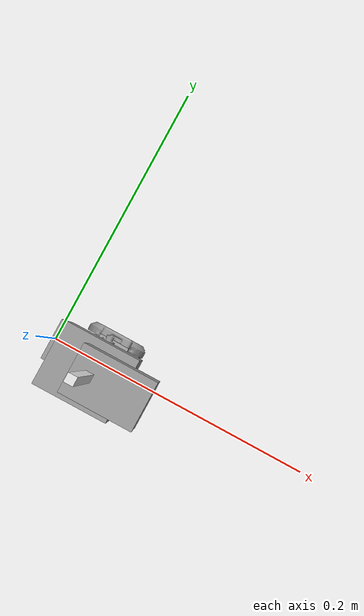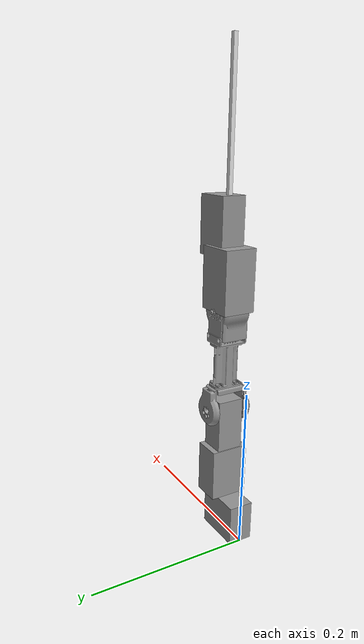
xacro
<?xml version="1.0"?>
<!-- Open_Manipulator Chain -->
<robot xmlns:xacro="http://ros.org/wiki/xacro">

  <!-- Link 1 -->
  <link name="link1">
    <visual>
      <origin xyz="${0.059*0.5} 0.0 ${0.050*0.5}" rpy="0 0 0"/>
      <geometry>
        <box size="0.059 0.031 0.050"/>
      </geometry>
      <material name="grey"/>
    </visual>

    <collision>
      <origin xyz="${0.059*0.5} 0.0 ${0.050*0.5}" rpy="0 0 0"/>
      <geometry>
        <box size="0.059 0.031 0.045"/>
      </geometry>
    </collision>
    <inertial>
      <origin xyz="3.0876154e-04 0.0000000e+00 -1.2176461e-04" />
      <mass value="7.9119962e-02" />
      <inertia ixx="1.2505234e-05" ixy="0.0" ixz="-1.7855208e-07"
               iyy="2.1898364e-05" iyz="0.0"
               izz="1.9267361e-05" />
    </inertial>
  </link>

  <!-- Joint 1 -->
  <joint name="joint1" type="revolute">
    <parent link="link1"/>
    <child link="link2"/>
    <origin xyz="0.045 0.0 0.050" rpy="0 0 0"/>
    <axis xyz="0 0 1"/>
    <limit velocity="4.8" effort="1" lower="${-pi*0.9}" upper="${pi*0.9}" />
  </joint>

  <!--  Link 2 -->
  <link name="link2">
    <visual>
      <origin xyz="0.0 0.0 ${0.065*0.5}" rpy="0 0 0"/>
      <geometry>
        <box size="0.033 0.048 0.065"/>
      </geometry>
      <material name="grey"/>
    </visual>
    <collision>
      <origin xyz="0.0 0.0 ${0.065*0.5}" rpy="0 0 0"/>
      <geometry>
        <box size="0.033 0.048 0.060"/>
      </geometry>
    </collision>
    <inertial>
      <origin xyz="-3.0184870e-04 5.4043684e-04 ${0.018 + 2.9433464e-02}" />
      <mass value="9.8406837e-02" />
      <inertia ixx="3.4543422e-05" ixy="-1.6031095e-08" ixz="-3.8375155e-07"
               iyy="3.2689329e-05" iyz="2.8511935e-08"
               izz="1.8850320e-05" />
    </inertial>
  </link>

  <!--  Joint 2 -->
  <joint name="joint2" type="revolute">
    <parent link="link2"/>
    <child link="link3"/>
    <origin xyz="0.0 0.0 0.050" rpy="${pi*0.5} 0 0"/> <!-- "0 0 ${pi}-->
    <axis xyz="0 0 1"/>
    <limit velocity="4.8" effort="1" lower="-2.8" upper="2.8" />
  </joint>

  <!--  Link 3 -->
  <link name="link3">
    <visual>
      <origin xyz="0 ${0.080*0.5} 0" rpy="0 0 0"/>
      <geometry>
        <box size="0.030 0.080 0.033"/>
      </geometry>
      <material name="grey"/>
    </visual>
    <collision>
      <origin xyz="0 ${0.080*0.5} 0" rpy="0 0 0"/>
      <geometry>
        <box size="0.030 0.075 0.033"/>
      </geometry>
    </collision>
    <inertial>
      <origin xyz="1.0308393e-02 3.7743363e-04 1.0170197e-01" />
      <mass value="1.3850917e-01" />
      <inertia ixx="3.3055381e-04" ixy="-9.7940978e-08" ixz="-3.8505711e-05"
               iyy="3.4290447e-04" iyz="-1.5717516e-06"
               izz="6.0346498e-05" />
    </inertial>
  </link>

  <!--  Joint 3 -->
  <joint name="joint3" type="revolute">
    <parent link="link3"/>
    <child link="link4"/>
    <origin xyz="0 0.0675 0 " rpy="0 0 0"/> <!-- "0 ${-pi*0.5} 0-->
    <axis xyz="0 0 1"/>
    <limit velocity="4.8" effort="1" lower="-2.8" upper="2.8" />
  </joint>

  <!--  Link 4 -->
  <link name="link4">
    <visual>
      <origin xyz="0 0 0" rpy="${-pi*0.5} 0 ${pi*0.5}"/>
      <geometry>
        <mesh filename="package://open_manipulator_description/meshes/chain_link4.stl" scale="0.001 0.001 0.001"/>
      </geometry>
      <material name="grey"/>
    </visual>
    <collision>
      <origin xyz="0 0 0" rpy="${-pi*0.5} 0 ${pi*0.5}"/>
      <geometry>
        <mesh filename="package://open_manipulator_description/meshes/chain_link4.stl" scale="0.001 0.001 0.001"/>
      </geometry>
    </collision>
    <inertial>
      <origin xyz="9.0909590e-02 3.8929816e-04 2.2413279e-04" />
      <mass value="1.3274562e-01" />
      <inertia ixx="3.0654178e-05" ixy="-1.2764155e-06" ixz="-2.6874417e-07"
               iyy="2.4230292e-04" iyz="1.1559550e-08"
               izz="2.5155057e-04" />
    </inertial>
  </link>

  <!--  Joint 4 -->
  <joint name="joint4" type="revolute">
    <parent link="link4"/>
    <child link="link5"/>
    <origin xyz="0.0 0.124 0.0" rpy="0 0 0"/>
    <axis xyz="0 0 1"/>
    <limit velocity="4.8" effort="1" lower="-2.8" upper="2.8" />
  </joint>

  <!--  Link 5 -->
  <link name="link5">
    <visual>
      <origin xyz="0 ${0.075*0.5} 0" rpy="0 0 0"/>
      <geometry>
        <box size="0.047 0.075 0.04"/>
      </geometry>
      <material name="grey"/>
    </visual>
    <collision>
      <origin xyz="0 ${0.075*0.5} 0" rpy="0 0 0"/>
      <geometry>
        <box size="0.047 0.070 0.04"/>
      </geometry>
    </collision>
    <inertial>
      <origin xyz="4.4206755e-02 3.6839985e-07 8.9142216e-03" />
      <mass value="1.4327573e-01" />
      <inertia ixx="8.0870749e-05" ixy="0.0" ixz="-1.0157896e-06"
               iyy="7.5980465e-05" iyz="0.0"
               izz="9.3127351e-05" />
    </inertial>
  </link>

  <!--  Joint 5 -->
  <joint name="joint5" type="revolute">
    <parent link="link5"/>
    <child link="link6"/>
    <origin xyz="0.0165 0.062 0.0" rpy="0 ${pi*0.5} 0"/>
    <axis xyz="0 0 1"/>
    <limit velocity="4.8" effort="1" lower="-2.8" upper="2.8" />
  </joint>

  <!--  Link 6 -->
  <link name="link6">
    <visual>
      <origin xyz="0 ${0.07*0.5} 0" rpy="0 0 0"/>
      <geometry>
        <box size="0.03 0.07 0.045"/>
      </geometry>
      <material name="grey"/>
    </visual>
    <collision>
      <origin xyz="0 ${0.07*0.5} 0" rpy="0 0 0"/>
      <geometry>
        <box size="0.03 0.065 0.045"/>
      </geometry>
    </collision>
    <inertial>
      <origin xyz="4.4206755e-02 3.6839985e-07 8.9142216e-03" />
      <mass value="1.4327573e-01" />
      <inertia ixx="8.0870749e-05" ixy="0.0" ixz="-1.0157896e-06"
               iyy="7.5980465e-05" iyz="0.0"
               izz="9.3127351e-05" />
    </inertial>
  </link>

  <!--  Joint 6 -->
  <joint name="joint6" type="revolute">
    <parent link="link6"/>
    <child link="end_effector"/>
    <origin xyz="0 0.07 -0.012" rpy="${-pi*0.5} ${-pi*0.5} 0"/> <!-- ${-pi*0.5} 0 0-->
    <axis xyz="0 0 1"/>
    <limit velocity="4.8" effort="1" lower="${-pi*0.9}" upper="${pi*0.9}" />
  </joint>

  <!-- end effector-->
  <link name="end_effector">
    <visual>
      <origin xyz="0 0 ${0.165*0.5}" rpy="0 0 0"/>
      <geometry>
        <box size="0.005 0.005 0.165" />
      </geometry>
      <material name="white"/>
     </visual>

    <inertial>
      <origin xyz="0 0 0" />
      <mass value="1.0e-03" />
      <inertia ixx="1.0e-03" ixy="0.0" ixz="0.0"
               iyy="1.0e-03" iyz="0.0"
               izz="1.0e-03" />
    </inertial>
  </link>
</robot>
